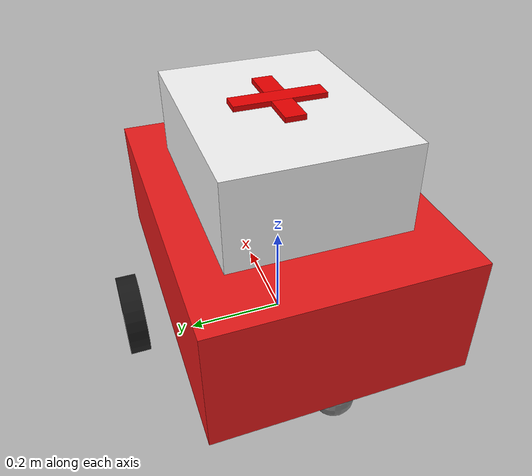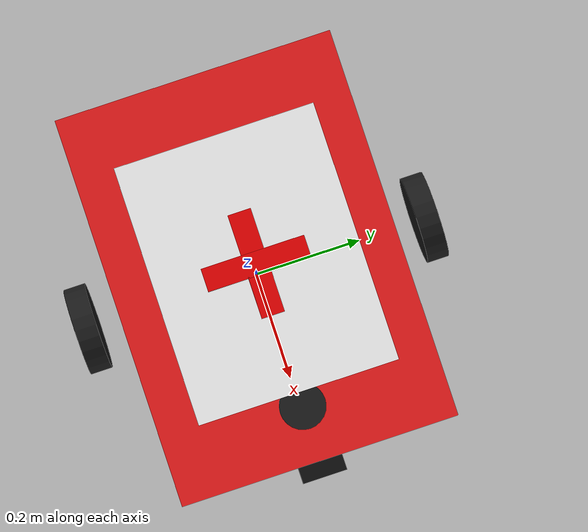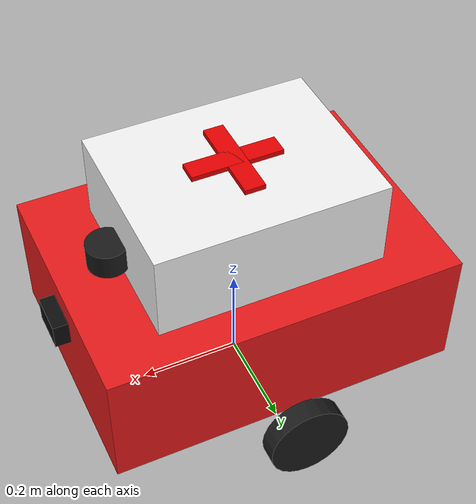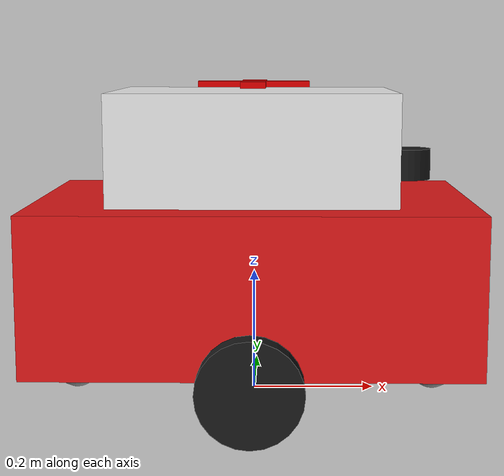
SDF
<?xml version="1.0" ?>
<sdf version="1.6">
  <model name="sample_robot">
    <static>false</static>

    <!-- BASE BODY - red box (sample delivery cart) -->
    <link name="base_link">
      <pose>0 0 0.2 0 0 0</pose>
      <inertial>
        <mass>6.0</mass>
        <inertia><ixx>0.12</ixx><ixy>0</ixy><ixz>0</ixz><iyy>0.15</iyy><iyz>0</iyz><izz>0.18</izz></inertia>
      </inertial>
      <collision name="collision">
        <geometry><box><size>0.7 0.5 0.25</size></box></geometry>
      </collision>
      <!-- Main red body -->
      <visual name="visual_body">
        <geometry><box><size>0.7 0.5 0.25</size></box></geometry>
        <material><ambient>0.9 0.1 0.1 1</ambient><diffuse>0.9 0.1 0.1 1</diffuse></material>
      </visual>
      <!-- White sample container on top -->
      <visual name="visual_container">
        <pose>0 0 0.2 0 0 0</pose>
        <geometry><box><size>0.45 0.35 0.2</size></box></geometry>
        <material><ambient>0.95 0.95 0.95 1</ambient></material>
      </visual>
      <!-- Red cross horizontal -->
      <visual name="visual_cross_h">
        <pose>0 0 0.31 0 0 0</pose>
        <geometry><box><size>0.18 0.04 0.01</size></box></geometry>
        <material><ambient>0.9 0.0 0.0 1</ambient></material>
      </visual>
      <!-- Red cross vertical -->
      <visual name="visual_cross_v">
        <pose>0 0 0.31 0 0 1.5708</pose>
        <geometry><box><size>0.18 0.04 0.01</size></box></geometry>
        <material><ambient>0.9 0.0 0.0 1</ambient></material>
      </visual>
      <!-- LiDAR on top -->
      <visual name="visual_lidar_body">
        <pose>0.25 0 0.18 0 0 0</pose>
        <geometry><cylinder><radius>0.04</radius><length>0.05</length></cylinder></geometry>
        <material><ambient>0.1 0.1 0.1 1</ambient></material>
      </visual>
      <!-- Camera (black box front) -->
      <visual name="visual_camera">
        <pose>0.36 0 0.05 0 0 0</pose>
        <geometry><box><size>0.04 0.08 0.05</size></box></geometry>
        <material><ambient>0.05 0.05 0.05 1</ambient></material>
      </visual>
    </link>

    <!-- LEFT WHEEL -->
    <link name="left_wheel">
      <pose>0 0.32 0.08 -1.5708 0 0</pose>
      <inertial><mass>0.5</mass><inertia><ixx>0.005</ixx><ixy>0</ixy><ixz>0</ixz><iyy>0.005</iyy><iyz>0</iyz><izz>0.005</izz></inertia></inertial>
      <collision name="collision">
        <geometry><cylinder><radius>0.08</radius><length>0.04</length></cylinder></geometry>
        <surface><friction><ode><mu>1.0</mu><mu2>1.0</mu2></ode></friction></surface>
      </collision>
      <visual name="visual">
        <geometry><cylinder><radius>0.08</radius><length>0.04</length></cylinder></geometry>
        <material><ambient>0.1 0.1 0.1 1</ambient></material>
      </visual>
    </link>
    <joint name="left_wheel_joint" type="revolute">
      <parent>base_link</parent><child>left_wheel</child>
      <axis><xyz>0 0 1</xyz><limit><lower>-1e+16</lower><upper>1e+16</upper></limit></axis>
    </joint>

    <!-- RIGHT WHEEL -->
    <link name="right_wheel">
      <pose>0 -0.32 0.08 -1.5708 0 0</pose>
      <inertial><mass>0.5</mass><inertia><ixx>0.005</ixx><ixy>0</ixy><ixz>0</ixz><iyy>0.005</iyy><iyz>0</iyz><izz>0.005</izz></inertia></inertial>
      <collision name="collision">
        <geometry><cylinder><radius>0.08</radius><length>0.04</length></cylinder></geometry>
        <surface><friction><ode><mu>1.0</mu><mu2>1.0</mu2></ode></friction></surface>
      </collision>
      <visual name="visual">
        <geometry><cylinder><radius>0.08</radius><length>0.04</length></cylinder></geometry>
        <material><ambient>0.1 0.1 0.1 1</ambient></material>
      </visual>
    </link>
    <joint name="right_wheel_joint" type="revolute">
      <parent>base_link</parent><child>right_wheel</child>
      <axis><xyz>0 0 1</xyz><limit><lower>-1e+16</lower><upper>1e+16</upper></limit></axis>
    </joint>

    <!-- FRONT CASTER -->
    <link name="caster_front">
      <pose>0.3 0 0.04 0 0 0</pose>
      <inertial><mass>0.1</mass><inertia><ixx>0.001</ixx><ixy>0</ixy><ixz>0</ixz><iyy>0.001</iyy><iyz>0</iyz><izz>0.001</izz></inertia></inertial>
      <collision name="collision">
        <geometry><sphere><radius>0.04</radius></sphere></geometry>
        <surface><friction><ode><mu>0.0</mu><mu2>0.0</mu2></ode></friction></surface>
      </collision>
      <visual name="visual"><geometry><sphere><radius>0.04</radius></sphere></geometry><material><ambient>0.5 0.5 0.5 1</ambient></material></visual>
    </link>
    <joint name="caster_front_joint" type="fixed"><parent>base_link</parent><child>caster_front</child></joint>

    <!-- BACK CASTER -->
    <link name="caster_back">
      <pose>-0.3 0 0.04 0 0 0</pose>
      <inertial><mass>0.1</mass><inertia><ixx>0.001</ixx><ixy>0</ixy><ixz>0</ixz><iyy>0.001</iyy><iyz>0</iyz><izz>0.001</izz></inertia></inertial>
      <collision name="collision">
        <geometry><sphere><radius>0.04</radius></sphere></geometry>
        <surface><friction><ode><mu>0.0</mu><mu2>0.0</mu2></ode></friction></surface>
      </collision>
      <visual name="visual"><geometry><sphere><radius>0.04</radius></sphere></geometry><material><ambient>0.5 0.5 0.5 1</ambient></material></visual>
    </link>
    <joint name="caster_back_joint" type="fixed"><parent>base_link</parent><child>caster_back</child></joint>

    <!-- LIDAR SENSOR -->
    <link name="lidar_link">
      <pose>0.25 0 0.38 0 0 0</pose>
      <inertial><mass>0.05</mass><inertia><ixx>0.0001</ixx><ixy>0</ixy><ixz>0</ixz><iyy>0.0001</iyy><iyz>0</iyz><izz>0.0001</izz></inertia></inertial>
      <sensor name="lidar" type="ray">
        <always_on>true</always_on>
        <visualize>true</visualize>
        <update_rate>10</update_rate>
        <ray>
          <scan><horizontal><samples>360</samples><resolution>1</resolution><min_angle>-3.14159</min_angle><max_angle>3.14159</max_angle></horizontal></scan>
          <range><min>0.15</min><max>8.0</max><resolution>0.01</resolution></range>
        </ray>
        <plugin name="sample_lidar_plugin" filename="libgazebo_ros_ray_sensor.so">
          <ros><namespace>/sample</namespace><remapping>~/out:=scan</remapping></ros>
          <output_type>sensor_msgs/LaserScan</output_type>
          <frame_name>sample/lidar_link</frame_name>
        </plugin>
      </sensor>
    </link>
    <joint name="lidar_joint" type="fixed"><parent>base_link</parent><child>lidar_link</child></joint>

    <!-- DIFF DRIVE PLUGIN -->
    <plugin name="sample_diff_drive" filename="libgazebo_ros_diff_drive.so">
      <ros>
        <namespace>/sample</namespace>
        <remapping>cmd_vel:=cmd_vel</remapping>
        <remapping>odom:=odom</remapping>
      </ros>
      <left_joint>left_wheel_joint</left_joint>
      <right_joint>right_wheel_joint</right_joint>
      <wheel_separation>0.64</wheel_separation>
      <wheel_diameter>0.16</wheel_diameter>
      <max_wheel_torque>20</max_wheel_torque>
      <max_wheel_acceleration>1.0</max_wheel_acceleration>
      <publish_odom>true</publish_odom>
      <publish_odom_tf>true</publish_odom_tf>
      <publish_wheel_tf>true</publish_wheel_tf>
      <odometry_frame>sample/odom</odometry_frame>
      <robot_base_frame>sample/base_link</robot_base_frame>
    </plugin>

  </model>
</sdf>
